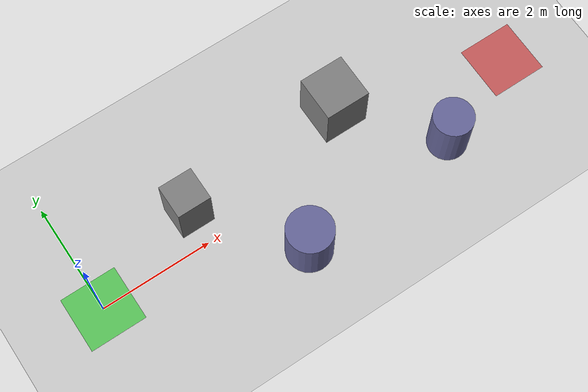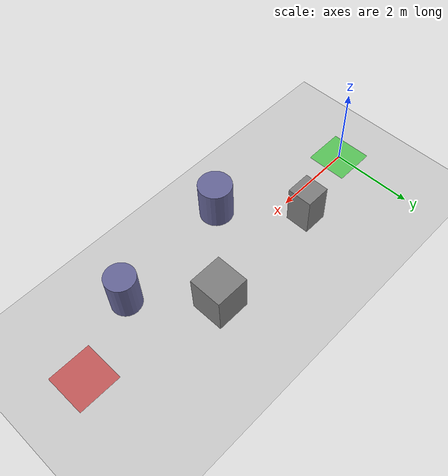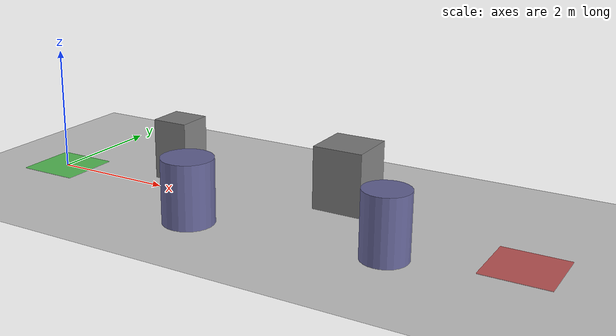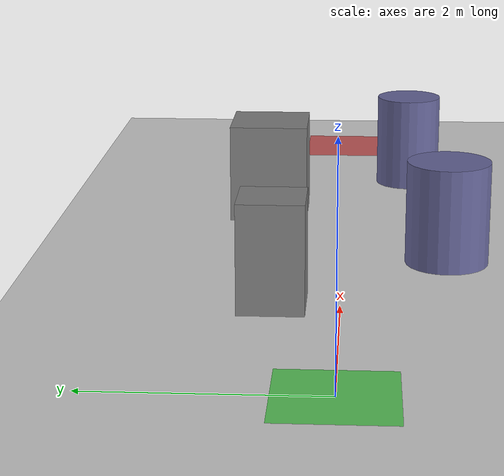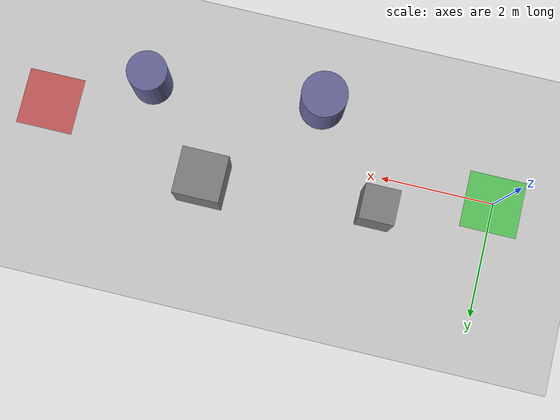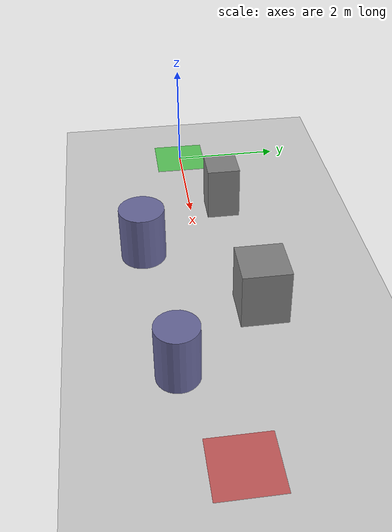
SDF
<?xml version="1.0" ?>
<sdf version="1.6">
  <world name="course">

    <!-- Basic scene -->
    <include><uri>model://ground_plane</uri></include>
    <include><uri>model://sun</uri></include>

    <spherical_coordinates>
      <surface_model>EARTH_WGS84</surface_model>
      <latitude_deg>55.7558</latitude_deg>
      <longitude_deg>37.6173</longitude_deg>
      <elevation>150.0</elevation>
      <heading_deg>180</heading_deg>
    </spherical_coordinates>

    <physics name="default_physics" type="ode">
      <max_step_size>0.001</max_step_size>
      <real_time_factor>1.0</real_time_factor>
      <real_time_update_rate>1000</real_time_update_rate>
    </physics>

    <!-- ========================= START ZONE A (green) ================= -->
    <model name="start_zone">
      <static>true</static>
      <pose>0 0 0.005 0 0 0</pose>
      <link name="link">
        <visual name="visual">
          <geometry><box><size>1.0 1.0 0.01</size></box></geometry>
          <material>
            <ambient>0.1 0.8 0.1 0.6</ambient>
            <diffuse>0.1 0.8 0.1 0.6</diffuse>
          </material>
        </visual>
      </link>
    </model>

    <!-- ========================= FINISH ZONE B (red) ================= -->
    <model name="finish_zone">
      <static>true</static>
      <pose>8 0 0.005 0 0 0</pose>
      <link name="link">
        <visual name="visual">
          <geometry><box><size>1.0 1.0 0.01</size></box></geometry>
          <material>
            <ambient>0.8 0.1 0.1 0.6</ambient>
            <diffuse>0.8 0.1 0.1 0.6</diffuse>
          </material>
        </visual>
      </link>
    </model>

    <!-- ========================= Static obstacles ==================== -->
    <model name="obstacle_1">
      <static>true</static>
      <pose>2.0 0.6 0.5 0 0 0</pose>
      <link name="link">
        <collision name="collision">
          <geometry><box><size>0.6 0.6 1.0</size></box></geometry>
        </collision>
        <visual name="visual">
          <geometry><box><size>0.6 0.6 1.0</size></box></geometry>
          <material><ambient>0.5 0.5 0.5 1</ambient><diffuse>0.5 0.5 0.5 1</diffuse></material>
        </visual>
      </link>
    </model>

    <model name="obstacle_2">
      <static>true</static>
      <pose>3.3 -1.0 0.5 0 0 0</pose>
      <link name="link">
        <collision name="collision">
          <geometry><cylinder><radius>0.4</radius><length>1.0</length></cylinder></geometry>
        </collision>
        <visual name="visual">
          <geometry><cylinder><radius>0.4</radius><length>1.0</length></cylinder></geometry>
          <material><ambient>0.4 0.4 0.6 1</ambient><diffuse>0.4 0.4 0.6 1</diffuse></material>
        </visual>
      </link>
    </model>

    <model name="obstacle_3">
      <static>true</static>
      <pose>5.0 0.8 0.5 0 0 0</pose>
      <link name="link">
        <collision name="collision">
          <geometry><box><size>0.8 0.8 1.0</size></box></geometry>
        </collision>
        <visual name="visual">
          <geometry><box><size>0.8 0.8 1.0</size></box></geometry>
          <material><ambient>0.5 0.5 0.5 1</ambient><diffuse>0.5 0.5 0.5 1</diffuse></material>
        </visual>
      </link>
    </model>

    <model name="obstacle_4">
      <static>true</static>
      <pose>6.3 -0.7 0.5 0 0 0</pose>
      <link name="link">
        <collision name="collision">
          <geometry><cylinder><radius>0.35</radius><length>1.0</length></cylinder></geometry>
        </collision>
        <visual name="visual">
          <geometry><cylinder><radius>0.35</radius><length>1.0</length></cylinder></geometry>
          <material><ambient>0.4 0.4 0.6 1</ambient><diffuse>0.4 0.4 0.6 1</diffuse></material>
        </visual>
      </link>
    </model>

  </world>
</sdf>
